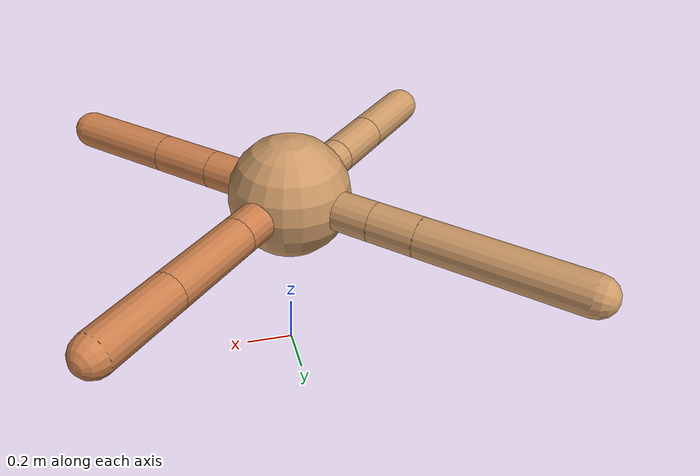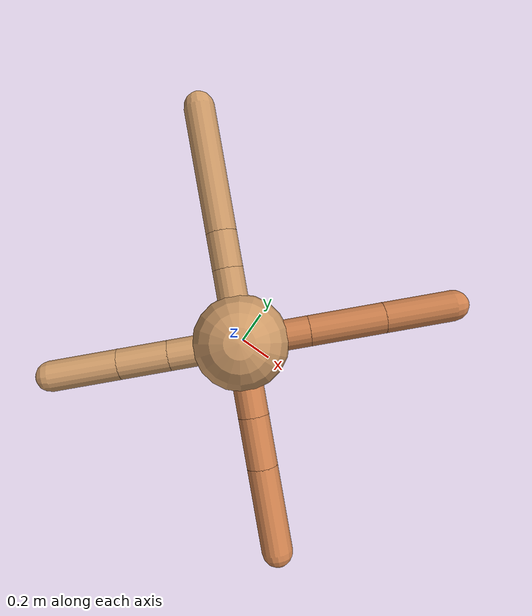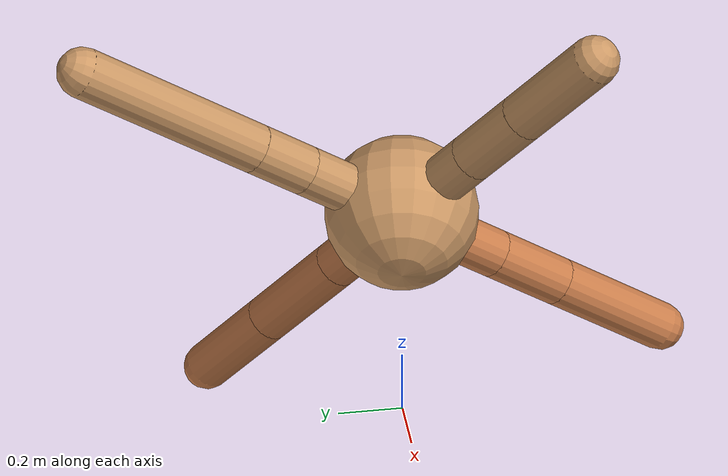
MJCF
<mujoco model="ant">
  <compiler angle="degree" coordinate="local" inertiafromgeom="true" />
  <option integrator="RK4" timestep="0.01" />
  <custom>
    <numeric data="0.0 0.0 0.55 1.0 0.0 0.0 0.0 0.0 1.0 0.0 -1.0 0.0 -1.0 0.0 1.0" name="init_qpos" />
  </custom>
  <default>
    <joint armature="1" damping="1" limited="true" />
    <geom conaffinity="0" condim="3" density="5.0" friction="1.5 0.1 0.1" margin="0.01" rgba="0.8 0.6 0.4 1" />
  </default>
  <worldbody>
    <body name="torso" pos="0 0 0.75">
      <geom name="torso_geom" pos="0 0 0" size="0.25" type="sphere" />

      <body name="front_left_leg" pos="0 0 0">
        <geom fromto="0.0 0.0 0.0 0.25091988652376956 0.25091988652376956 0.0" name="aux_1_geom" size="0.08" type="capsule" rgba=".8 .5 .3 1" />
        <body name="aux_1" pos="0.25091988652376956 0.25091988652376956 0.0">
          <joint axis="0 0 1" name="hip_1" pos="0.0 0.0 0.0" range="-40 40" type="hinge" />
          <geom fromto="0.0 0.0 0.0 0.27262841929172643 0.27262841929172643 0.0" name="left_leg_geom" size="0.08" type="capsule" rgba=".8 .5 .3 1" />
          <body pos="0.27262841929172643 0.27262841929172643 0.0" name="front_left_foot">
            <joint axis="-1 1 0" name="ankle_1" pos="0.0 0.0 0.0" range="30 100" type="hinge" />
            <geom fromto="0.0 0.0 0.0 0.2534210595617764 0.2534210595617764 0.0" name="left_ankle_geom" size="0.08" type="capsule" rgba=".8 .5 .3 1" />
          </body>
        </body>
      </body>
      <body name="front_right_leg" pos="0 0 0">
        <geom fromto="0.0 0.0 0.0 -0.2698972165943038 0.2698972165943038 0.0" name="aux_2_geom" size="0.08" type="capsule" />
        <body name="aux_2" pos="-0.2698972165943038 0.2698972165943038 0.0">
          <joint axis="0 0 1" name="hip_2" pos="0.0 0.0 0.0" range="-40 40" type="hinge" />
          <geom fromto="0.0 0.0 0.0 -0.13415719613434376 0.13415719613434376 0.0" name="right_leg_geom" size="0.08" type="capsule" />
          <body pos="-0.13415719613434376 0.13415719613434376 0.0" name="front_right_foot">
            <joint axis="1 1 0" name="ankle_2" pos="0.0 0.0 0.0" range="-100 -30" type="hinge" />
            <geom fromto="0.0 0.0 0.0 -0.45873283942475446 0.45873283942475446 0.0" name="right_ankle_geom" size="0.08" type="capsule" />
          </body>
        </body>
      </body>
      <body name="left_back_leg" pos="0 0 0">
        <geom fromto="0.0 0.0 0.0 -0.2604547831268587 -0.2604547831268587 0.0" name="aux_3_geom" size="0.08" type="capsule" />
        <body name="aux_3" pos="-0.2604547831268587 -0.2604547831268587 0.0">
          <joint axis="0 0 1" name="hip_3" pos="0.0 0.0 0.0" range="-40 40" type="hinge" />
          <geom fromto="0.0 0.0 0.0 -0.18270789470266385 -0.18270789470266385 0.0" name="back_leg_geom" size="0.08" type="capsule" />
          <body pos="-0.18270789470266385 -0.18270789470266385 0.0" name="left_back_foot">
            <joint axis="-1 1 0" name="ankle_3" pos="0.0 0.0 0.0" range="-100 -30" type="hinge" />
            <geom fromto="0.0 0.0 0.0 -0.24822063140921094 -0.24822063140921094 0.0" name="third_ankle_geom" size="0.08" type="capsule" />
          </body>
        </body>
      </body>
      <body name="right_back_leg" pos="0 0 0">
        <geom fromto="0.0 0.0 0.0 0.26707859988531757 -0.26707859988531757 0.0" name="aux_4_geom" size="0.08" type="capsule" rgba=".8 .5 .3 1" />
        <body name="aux_4" pos="0.26707859988531757 -0.26707859988531757 0.0">
          <joint axis="0 0 1" name="hip_4" pos="0.0 0.0 0.0" range="-40 40" type="hinge" />
          <geom fromto="0.0 0.0 0.0 0.18579587545920528 -0.18579587545920528 0.0" name="rightback_leg_geom" size="0.08" type="capsule" rgba=".8 .5 .3 1" />
          <body pos="0.18579587545920528 -0.18579587545920528 0.0" name="right_back_foot">
            <joint axis="1 1 0" name="ankle_4" pos="0.0 0.0 0.0" range="30 100" type="hinge" />
            <geom fromto="0.0 0.0 0.0 0.3092578967735169 -0.3092578967735169 0.0" name="fourth_ankle_geom" size="0.08" type="capsule" rgba=".8 .5 .3 1" />
          </body>
        </body>
      </body>
    </body>
  </worldbody>
  <actuator>
    <motor ctrllimited="true" ctrlrange="-1.0 1.0" joint="hip_4" gear="150" />
    <motor ctrllimited="true" ctrlrange="-1.0 1.0" joint="ankle_4" gear="150" />
    <motor ctrllimited="true" ctrlrange="-1.0 1.0" joint="hip_1" gear="150" />
    <motor ctrllimited="true" ctrlrange="-1.0 1.0" joint="ankle_1" gear="150" />
    <motor ctrllimited="true" ctrlrange="-1.0 1.0" joint="hip_2" gear="150" />
    <motor ctrllimited="true" ctrlrange="-1.0 1.0" joint="ankle_2" gear="150" />
    <motor ctrllimited="true" ctrlrange="-1.0 1.0" joint="hip_3" gear="150" />
    <motor ctrllimited="true" ctrlrange="-1.0 1.0" joint="ankle_3" gear="150" />
  </actuator>
</mujoco>
